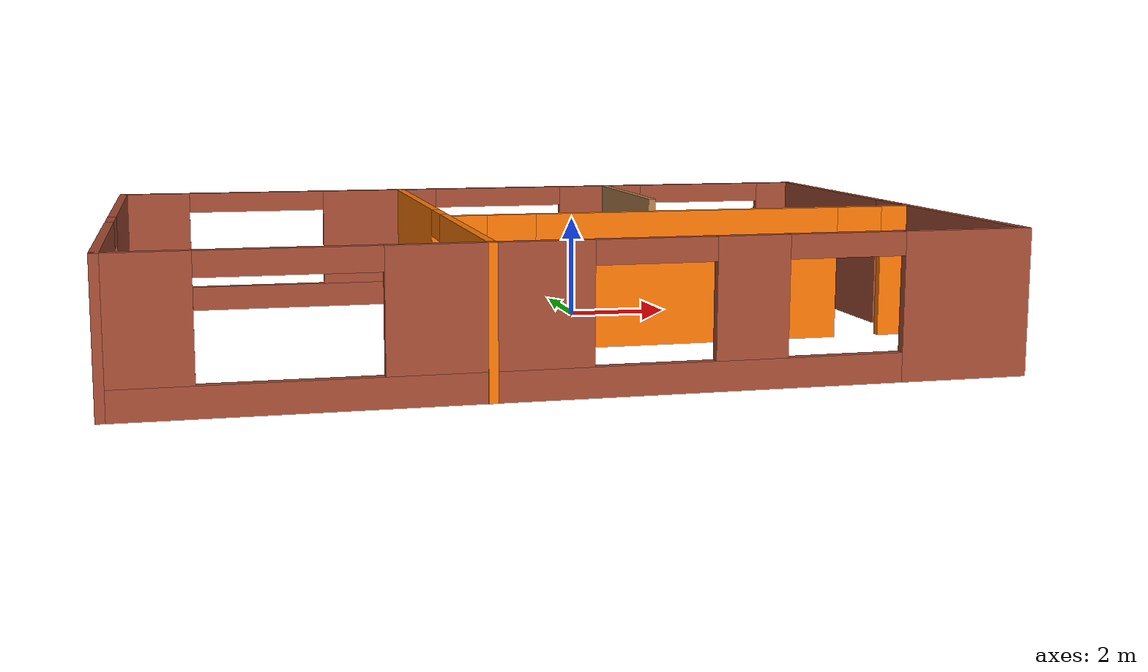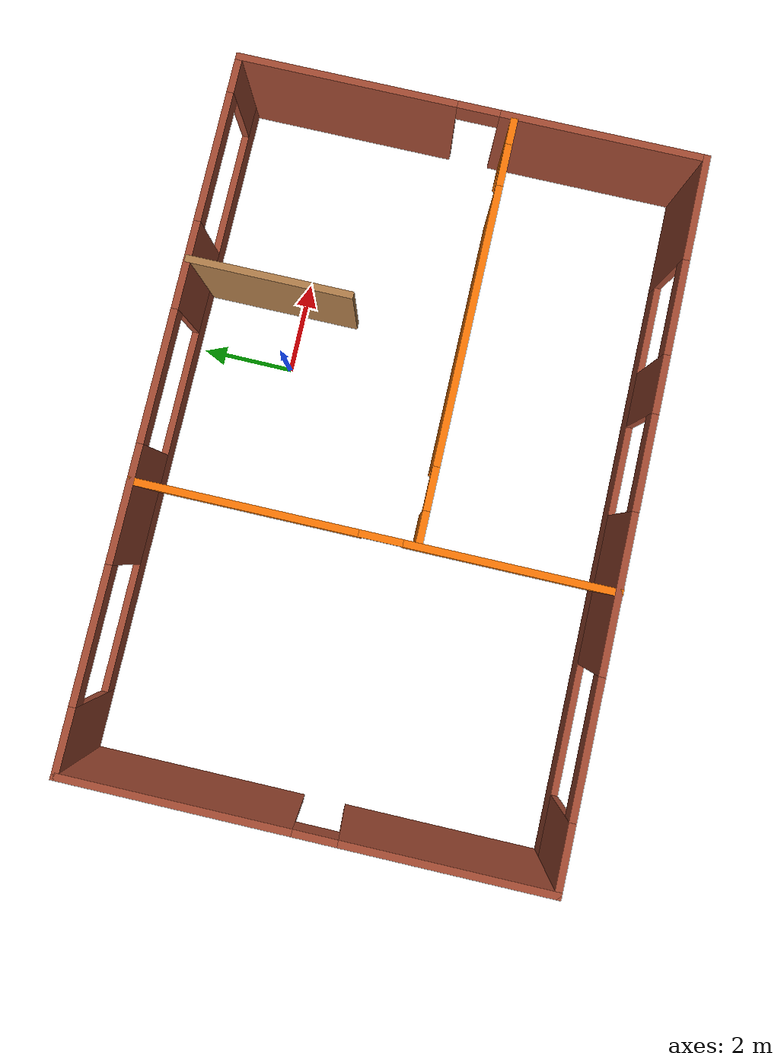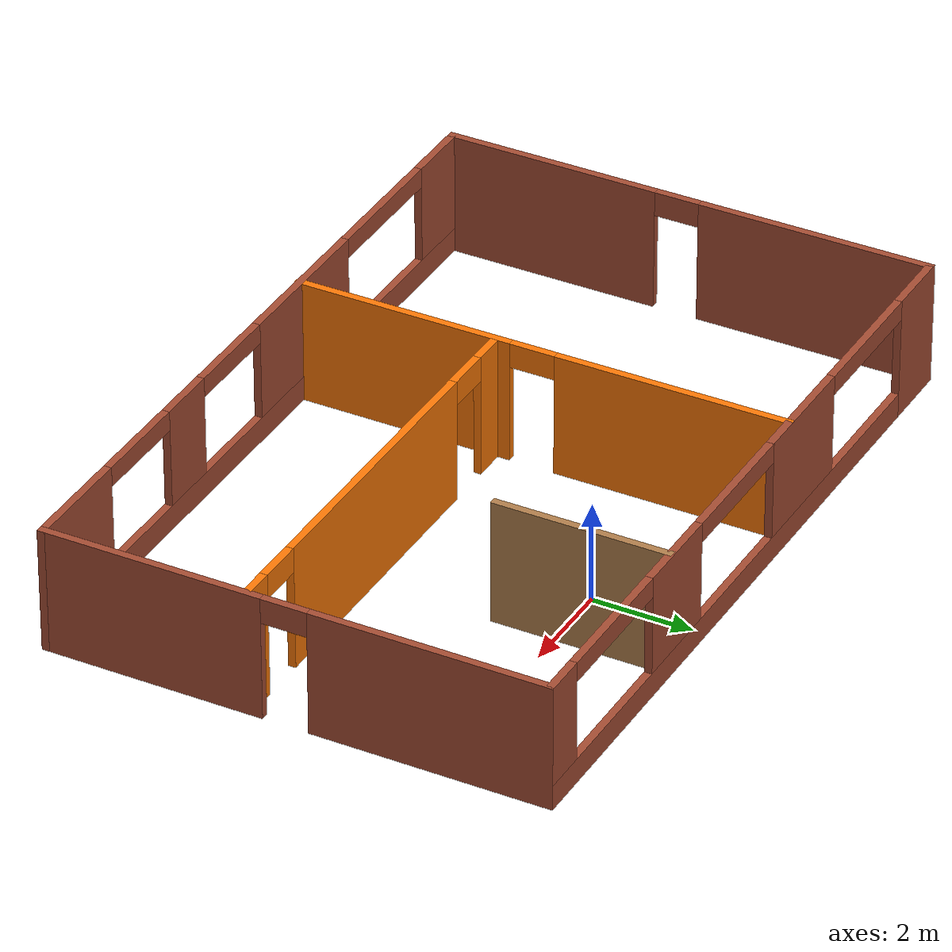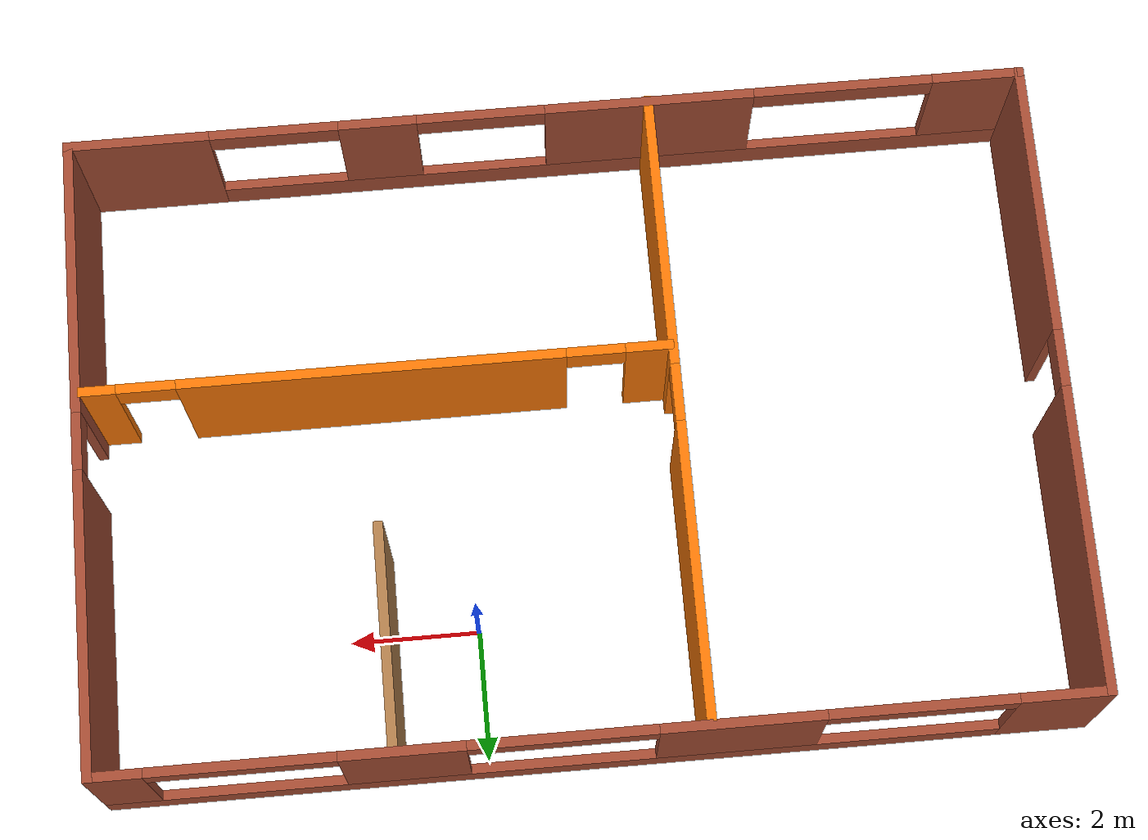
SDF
<?xml version='1.0'?>
<sdf version='1.6'>
  <model name='Apartment'>
    <pose frame=''>-1.6844 -2.73325 0 0 -0 0</pose>
    <link name='Wall_10'>
      <pose frame=''>0 4.92997 0 0 -0 0</pose>
      <visual name='Wall_10_Visual_0'>
        <pose frame=''>-6.79371 0 1.25 0 -0 0</pose>
        <geometry>
          <box>
            <size>1.41257 0.15 2.5</size>
          </box>
        </geometry>
        <material>
          <script>
            <uri>file://media/materials/scripts/gazebo.material</uri>
            <name>Gazebo/Bricks</name>
          </script>
          <ambient>1 1 1 1</ambient>
        </material>
        <meta>
          <layer>0</layer>
        </meta>
      </visual>
      <collision name='Wall_10_Collision_0'>
        <geometry>
          <box>
            <size>1.41257 0.15 2.5</size>
          </box>
        </geometry>
        <pose frame=''>-6.79371 0 1.25 0 -0 0</pose>
      </collision>
      <visual name='Wall_10_Visual_1'>
        <pose frame=''>0.706287 0 0.25 0 -0 0</pose>
        <geometry>
          <box>
            <size>13.5874 0.15 0.5</size>
          </box>
        </geometry>
        <material>
          <script>
            <uri>file://media/materials/scripts/gazebo.material</uri>
            <name>Gazebo/Bricks</name>
          </script>
          <ambient>1 1 1 1</ambient>
        </material>
        <meta>
          <layer>0</layer>
        </meta>
      </visual>
      <collision name='Wall_10_Collision_1'>
        <geometry>
          <box>
            <size>13.5874 0.15 0.5</size>
          </box>
        </geometry>
        <pose frame=''>0.706287 0 0.25 0 -0 0</pose>
      </collision>
      <visual name='Wall_10_Visual_2'>
        <pose frame=''>-2.06392 0 1.5 0 -0 0</pose>
        <geometry>
          <box>
            <size>2.44702 0.15 2</size>
          </box>
        </geometry>
        <material>
          <script>
            <uri>file://media/materials/scripts/gazebo.material</uri>
            <name>Gazebo/Bricks</name>
          </script>
          <ambient>1 1 1 1</ambient>
        </material>
        <meta>
          <layer>0</layer>
        </meta>
      </visual>
      <collision name='Wall_10_Collision_2'>
        <geometry>
          <box>
            <size>2.44702 0.15 2</size>
          </box>
        </geometry>
        <pose frame=''>-2.06392 0 1.5 0 -0 0</pose>
      </collision>
      <visual name='Wall_10_Visual_3'>
        <pose frame=''>2.89414 0 1.5 0 -0 0</pose>
        <geometry>
          <box>
            <size>1.86909 0.15 2</size>
          </box>
        </geometry>
        <material>
          <script>
            <uri>file://media/materials/scripts/gazebo.material</uri>
            <name>Gazebo/Bricks</name>
          </script>
          <ambient>1 1 1 1</ambient>
        </material>
        <meta>
          <layer>0</layer>
        </meta>
      </visual>
      <collision name='Wall_10_Collision_3'>
        <geometry>
          <box>
            <size>1.86909 0.15 2</size>
          </box>
        </geometry>
        <pose frame=''>2.89414 0 1.5 0 -0 0</pose>
      </collision>
      <visual name='Wall_10_Visual_4'>
        <pose frame=''>7.06434 0 1.5 0 -0 0</pose>
        <geometry>
          <box>
            <size>0.87132 0.15 2</size>
          </box>
        </geometry>
        <material>
          <script>
            <uri>file://media/materials/scripts/gazebo.material</uri>
            <name>Gazebo/Bricks</name>
          </script>
          <ambient>1 1 1 1</ambient>
        </material>
        <meta>
          <layer>0</layer>
        </meta>
      </visual>
      <collision name='Wall_10_Collision_4'>
        <geometry>
          <box>
            <size>0.87132 0.15 2</size>
          </box>
        </geometry>
        <pose frame=''>7.06434 0 1.5 0 -0 0</pose>
      </collision>
      <visual name='Wall_10_Visual_5'>
        <pose frame=''>-4.68743 0 2.3 0 -0 0</pose>
        <geometry>
          <box>
            <size>2.8 0.15 0.4</size>
          </box>
        </geometry>
        <material>
          <script>
            <uri>file://media/materials/scripts/gazebo.material</uri>
            <name>Gazebo/Bricks</name>
          </script>
          <ambient>1 1 1 1</ambient>
        </material>
        <meta>
          <layer>0</layer>
        </meta>
      </visual>
      <collision name='Wall_10_Collision_5'>
        <geometry>
          <box>
            <size>2.8 0.15 0.4</size>
          </box>
        </geometry>
        <pose frame=''>-4.68743 0 2.3 0 -0 0</pose>
      </collision>
      <visual name='Wall_10_Visual_6'>
        <pose frame=''>0.559594 0 2.3 0 -0 0</pose>
        <geometry>
          <box>
            <size>2.8 0.15 0.4</size>
          </box>
        </geometry>
        <material>
          <script>
            <uri>file://media/materials/scripts/gazebo.material</uri>
            <name>Gazebo/Bricks</name>
          </script>
          <ambient>1 1 1 1</ambient>
        </material>
        <meta>
          <layer>0</layer>
        </meta>
      </visual>
      <collision name='Wall_10_Collision_6'>
        <geometry>
          <box>
            <size>2.8 0.15 0.4</size>
          </box>
        </geometry>
        <pose frame=''>0.559594 0 2.3 0 -0 0</pose>
      </collision>
      <visual name='Wall_10_Visual_7'>
        <pose frame=''>5.22868 0 2.3 0 -0 0</pose>
        <geometry>
          <box>
            <size>2.8 0.15 0.4</size>
          </box>
        </geometry>
        <material>
          <script>
            <uri>file://media/materials/scripts/gazebo.material</uri>
            <name>Gazebo/Bricks</name>
          </script>
          <ambient>1 1 1 1</ambient>
        </material>
        <meta>
          <layer>0</layer>
        </meta>
      </visual>
      <collision name='Wall_10_Collision_7'>
        <geometry>
          <box>
            <size>2.8 0.15 0.4</size>
          </box>
        </geometry>
        <pose frame=''>5.22868 0 2.3 0 -0 0</pose>
      </collision>
    </link>
    <link name='Wall_11'>
      <pose frame=''>7.425 0.004969 0 0 0 -1.5708</pose>
      <visual name='Wall_11_Visual_0'>
        <pose frame=''>-2.65027 0 1.25 0 -0 0</pose>
        <geometry>
          <box>
            <size>4.69945 0.15 2.5</size>
          </box>
        </geometry>
        <material>
          <script>
            <uri>file://media/materials/scripts/gazebo.material</uri>
            <name>Gazebo/Bricks</name>
          </script>
          <ambient>1 1 1 1</ambient>
        </material>
        <meta>
          <layer>0</layer>
        </meta>
      </visual>
      <collision name='Wall_11_Collision_0'>
        <geometry>
          <box>
            <size>4.69945 0.15 2.5</size>
          </box>
        </geometry>
        <pose frame=''>-2.65027 0 1.25 0 -0 0</pose>
      </collision>
      <visual name='Wall_11_Visual_1'>
        <pose frame=''>2.79973 0 1.25 0 -0 0</pose>
        <geometry>
          <box>
            <size>4.40055 0.15 2.5</size>
          </box>
        </geometry>
        <material>
          <script>
            <uri>file://media/materials/scripts/gazebo.material</uri>
            <name>Gazebo/Bricks</name>
          </script>
          <ambient>1 1 1 1</ambient>
        </material>
        <meta>
          <layer>0</layer>
        </meta>
      </visual>
      <collision name='Wall_11_Collision_1'>
        <geometry>
          <box>
            <size>4.40055 0.15 2.5</size>
          </box>
        </geometry>
        <pose frame=''>2.79973 0 1.25 0 -0 0</pose>
      </collision>
      <visual name='Wall_11_Visual_2'>
        <pose frame=''>0.149452 0 2.25 0 -0 0</pose>
        <geometry>
          <box>
            <size>0.9 0.15 0.5</size>
          </box>
        </geometry>
        <material>
          <script>
            <uri>file://media/materials/scripts/gazebo.material</uri>
            <name>Gazebo/Bricks</name>
          </script>
          <ambient>1 1 1 1</ambient>
        </material>
        <meta>
          <layer>0</layer>
        </meta>
      </visual>
      <collision name='Wall_11_Collision_2'>
        <geometry>
          <box>
            <size>0.9 0.15 0.5</size>
          </box>
        </geometry>
        <pose frame=''>0.149452 0 2.25 0 -0 0</pose>
      </collision>
    </link>
    <link name='Wall_12'>
      <pose frame=''>0 -4.92003 0 0 -0 3.14159</pose>
      <visual name='Wall_12_Visual_0'>
        <pose frame=''>-6.37006 0 1.25 0 -0 0</pose>
        <geometry>
          <box>
            <size>2.25989 0.15 2.5</size>
          </box>
        </geometry>
        <material>
          <script>
            <uri>file://media/materials/scripts/gazebo.material</uri>
            <name>Gazebo/Bricks</name>
          </script>
          <ambient>1 1 1 1</ambient>
        </material>
        <meta>
          <layer>0</layer>
        </meta>
      </visual>
      <collision name='Wall_12_Collision_0'>
        <geometry>
          <box>
            <size>2.25989 0.15 2.5</size>
          </box>
        </geometry>
        <pose frame=''>-6.37006 0 1.25 0 -0 0</pose>
      </collision>
      <visual name='Wall_12_Visual_1'>
        <pose frame=''>1.12994 0 0.25 0 -0 0</pose>
        <geometry>
          <box>
            <size>12.7401 0.15 0.5</size>
          </box>
        </geometry>
        <material>
          <script>
            <uri>file://media/materials/scripts/gazebo.material</uri>
            <name>Gazebo/Bricks</name>
          </script>
          <ambient>1 1 1 1</ambient>
        </material>
        <meta>
          <layer>0</layer>
        </meta>
      </visual>
      <collision name='Wall_12_Collision_1'>
        <geometry>
          <box>
            <size>12.7401 0.15 0.5</size>
          </box>
        </geometry>
        <pose frame=''>1.12994 0 0.25 0 -0 0</pose>
      </collision>
      <visual name='Wall_12_Visual_2'>
        <pose frame=''>-2.62798 0 1.5 0 -0 0</pose>
        <geometry>
          <box>
            <size>1.22426 0.15 2</size>
          </box>
        </geometry>
        <material>
          <script>
            <uri>file://media/materials/scripts/gazebo.material</uri>
            <name>Gazebo/Bricks</name>
          </script>
          <ambient>1 1 1 1</ambient>
        </material>
        <meta>
          <layer>0</layer>
        </meta>
      </visual>
      <collision name='Wall_12_Collision_2'>
        <geometry>
          <box>
            <size>1.22426 0.15 2</size>
          </box>
        </geometry>
        <pose frame=''>-2.62798 0 1.5 0 -0 0</pose>
      </collision>
      <visual name='Wall_12_Visual_3'>
        <pose frame=''>1.62058 0 1.5 0 -0 0</pose>
        <geometry>
          <box>
            <size>3.27286 0.15 2</size>
          </box>
        </geometry>
        <material>
          <script>
            <uri>file://media/materials/scripts/gazebo.material</uri>
            <name>Gazebo/Bricks</name>
          </script>
          <ambient>1 1 1 1</ambient>
        </material>
        <meta>
          <layer>0</layer>
        </meta>
      </visual>
      <collision name='Wall_12_Collision_3'>
        <geometry>
          <box>
            <size>3.27286 0.15 2</size>
          </box>
        </geometry>
        <pose frame=''>1.62058 0 1.5 0 -0 0</pose>
      </collision>
      <visual name='Wall_12_Visual_4'>
        <pose frame=''>6.7785 0 1.5 0 -0 0</pose>
        <geometry>
          <box>
            <size>1.44299 0.15 2</size>
          </box>
        </geometry>
        <material>
          <script>
            <uri>file://media/materials/scripts/gazebo.material</uri>
            <name>Gazebo/Bricks</name>
          </script>
          <ambient>1 1 1 1</ambient>
        </material>
        <meta>
          <layer>0</layer>
        </meta>
      </visual>
      <collision name='Wall_12_Collision_4'>
        <geometry>
          <box>
            <size>1.44299 0.15 2</size>
          </box>
        </geometry>
        <pose frame=''>6.7785 0 1.5 0 -0 0</pose>
      </collision>
      <visual name='Wall_12_Visual_5'>
        <pose frame=''>-4.24011 0 2.3 0 -0 0</pose>
        <geometry>
          <box>
            <size>2 0.15 0.4</size>
          </box>
        </geometry>
        <material>
          <script>
            <uri>file://media/materials/scripts/gazebo.material</uri>
            <name>Gazebo/Bricks</name>
          </script>
          <ambient>1 1 1 1</ambient>
        </material>
        <meta>
          <layer>0</layer>
        </meta>
      </visual>
      <collision name='Wall_12_Collision_5'>
        <geometry>
          <box>
            <size>2 0.15 0.4</size>
          </box>
        </geometry>
        <pose frame=''>-4.24011 0 2.3 0 -0 0</pose>
      </collision>
      <visual name='Wall_12_Visual_6'>
        <pose frame=''>-1.01586 0 2.3 0 -0 0</pose>
        <geometry>
          <box>
            <size>2 0.15 0.4</size>
          </box>
        </geometry>
        <material>
          <script>
            <uri>file://media/materials/scripts/gazebo.material</uri>
            <name>Gazebo/Bricks</name>
          </script>
          <ambient>1 1 1 1</ambient>
        </material>
        <meta>
          <layer>0</layer>
        </meta>
      </visual>
      <collision name='Wall_12_Collision_6'>
        <geometry>
          <box>
            <size>2 0.15 0.4</size>
          </box>
        </geometry>
        <pose frame=''>-1.01586 0 2.3 0 -0 0</pose>
      </collision>
      <visual name='Wall_12_Visual_7'>
        <pose frame=''>4.65701 0 2.3 0 -0 0</pose>
        <geometry>
          <box>
            <size>2.8 0.15 0.4</size>
          </box>
        </geometry>
        <material>
          <script>
            <uri>file://media/materials/scripts/gazebo.material</uri>
            <name>Gazebo/Bricks</name>
          </script>
          <ambient>1 1 1 1</ambient>
        </material>
        <meta>
          <layer>0</layer>
        </meta>
      </visual>
      <collision name='Wall_12_Collision_7'>
        <geometry>
          <box>
            <size>2.8 0.15 0.4</size>
          </box>
        </geometry>
        <pose frame=''>4.65701 0 2.3 0 -0 0</pose>
      </collision>
    </link>
    <link name='Wall_14'>
      <pose frame=''>-1.60005 -0.004969 0 0 0 -1.5708</pose>
      <visual name='Wall_14_Visual_0'>
        <pose frame=''>-2.65524 0 1.25 0 -0 0</pose>
        <geometry>
          <box>
            <size>4.68951 0.15 2.5</size>
          </box>
        </geometry>
        <material>
          <script>
            <uri>file://media/materials/scripts/gazebo.material</uri>
            <name>Gazebo/Grey</name>
          </script>
          <ambient>0.996078 0.47451 0.0196078 1</ambient>
        </material>
        <meta>
          <layer>0</layer>
        </meta>
      </visual>
      <collision name='Wall_14_Collision_0'>
        <geometry>
          <box>
            <size>4.68951 0.15 2.5</size>
          </box>
        </geometry>
        <pose frame=''>-2.65524 0 1.25 0 -0 0</pose>
      </collision>
      <visual name='Wall_14_Visual_1'>
        <pose frame=''>2.79476 0 1.25 0 -0 0</pose>
        <geometry>
          <box>
            <size>4.41049 0.15 2.5</size>
          </box>
        </geometry>
        <material>
          <script>
            <uri>file://media/materials/scripts/gazebo.material</uri>
            <name>Gazebo/Grey</name>
          </script>
          <ambient>0.996078 0.47451 0.0196078 1</ambient>
        </material>
        <meta>
          <layer>0</layer>
        </meta>
      </visual>
      <collision name='Wall_14_Collision_1'>
        <geometry>
          <box>
            <size>4.41049 0.15 2.5</size>
          </box>
        </geometry>
        <pose frame=''>2.79476 0 1.25 0 -0 0</pose>
      </collision>
      <visual name='Wall_14_Visual_2'>
        <pose frame=''>0.139514 0 2.25 0 -0 0</pose>
        <geometry>
          <box>
            <size>0.9 0.15 0.5</size>
          </box>
        </geometry>
        <material>
          <script>
            <uri>file://media/materials/scripts/gazebo.material</uri>
            <name>Gazebo/Grey</name>
          </script>
          <ambient>0.996078 0.47451 0.0196078 1</ambient>
        </material>
        <meta>
          <layer>0</layer>
        </meta>
      </visual>
      <collision name='Wall_14_Collision_2'>
        <geometry>
          <box>
            <size>0.9 0.15 0.5</size>
          </box>
        </geometry>
        <pose frame=''>0.139514 0 2.25 0 -0 0</pose>
      </collision>
    </link>
    <link name='Wall_16'>
      <pose frame=''>2.88579 -0.904921 0 0 -0 0</pose>
      <visual name='Wall_16_Visual_0'>
        <pose frame=''>-4.13238 0 1.25 0 -0 0</pose>
        <geometry>
          <box>
            <size>0.735239 0.15 2.5</size>
          </box>
        </geometry>
        <material>
          <script>
            <uri>file://media/materials/scripts/gazebo.material</uri>
            <name>Gazebo/Grey</name>
          </script>
          <ambient>0.996078 0.47451 0.0196078 1</ambient>
        </material>
        <meta>
          <layer>0</layer>
        </meta>
      </visual>
      <collision name='Wall_16_Collision_0'>
        <geometry>
          <box>
            <size>0.735239 0.15 2.5</size>
          </box>
        </geometry>
        <pose frame=''>-4.13238 0 1.25 0 -0 0</pose>
      </collision>
      <visual name='Wall_16_Visual_1'>
        <pose frame=''>0.084394 0 1.25 0 -0 0</pose>
        <geometry>
          <box>
            <size>5.89831 0.15 2.5</size>
          </box>
        </geometry>
        <material>
          <script>
            <uri>file://media/materials/scripts/gazebo.material</uri>
            <name>Gazebo/Grey</name>
          </script>
          <ambient>0.996078 0.47451 0.0196078 1</ambient>
        </material>
        <meta>
          <layer>0</layer>
        </meta>
      </visual>
      <collision name='Wall_16_Collision_1'>
        <geometry>
          <box>
            <size>5.89831 0.15 2.5</size>
          </box>
        </geometry>
        <pose frame=''>0.084394 0 1.25 0 -0 0</pose>
      </collision>
      <visual name='Wall_16_Visual_2'>
        <pose frame=''>4.21678 0 1.25 0 -0 0</pose>
        <geometry>
          <box>
            <size>0.56645 0.15 2.5</size>
          </box>
        </geometry>
        <material>
          <script>
            <uri>file://media/materials/scripts/gazebo.material</uri>
            <name>Gazebo/Grey</name>
          </script>
          <ambient>0.996078 0.47451 0.0196078 1</ambient>
        </material>
        <meta>
          <layer>0</layer>
        </meta>
      </visual>
      <collision name='Wall_16_Collision_2'>
        <geometry>
          <box>
            <size>0.56645 0.15 2.5</size>
          </box>
        </geometry>
        <pose frame=''>4.21678 0 1.25 0 -0 0</pose>
      </collision>
      <visual name='Wall_16_Visual_3'>
        <pose frame=''>-3.31476 0 2.25 0 -0 0</pose>
        <geometry>
          <box>
            <size>0.9 0.15 0.5</size>
          </box>
        </geometry>
        <material>
          <script>
            <uri>file://media/materials/scripts/gazebo.material</uri>
            <name>Gazebo/Grey</name>
          </script>
          <ambient>0.996078 0.47451 0.0196078 1</ambient>
        </material>
        <meta>
          <layer>0</layer>
        </meta>
      </visual>
      <collision name='Wall_16_Collision_3'>
        <geometry>
          <box>
            <size>0.9 0.15 0.5</size>
          </box>
        </geometry>
        <pose frame=''>-3.31476 0 2.25 0 -0 0</pose>
      </collision>
      <visual name='Wall_16_Visual_4'>
        <pose frame=''>3.48355 0 2.25 0 -0 0</pose>
        <geometry>
          <box>
            <size>0.9 0.15 0.5</size>
          </box>
        </geometry>
        <material>
          <script>
            <uri>file://media/materials/scripts/gazebo.material</uri>
            <name>Gazebo/Grey</name>
          </script>
          <ambient>0.996078 0.47451 0.0196078 1</ambient>
        </material>
        <meta>
          <layer>0</layer>
        </meta>
      </visual>
      <collision name='Wall_16_Collision_4'>
        <geometry>
          <box>
            <size>0.9 0.15 0.5</size>
          </box>
        </geometry>
        <pose frame=''>3.48355 0 2.25 0 -0 0</pose>
      </collision>
    </link>
    <link name='Wall_18'>
      <collision name='Wall_18_Collision'>
        <geometry>
          <box>
            <size>3.5 0.15 2.5</size>
          </box>
        </geometry>
        <pose frame=''>0 0 1.25 0 -0 0</pose>
      </collision>
      <visual name='Wall_18_Visual'>
        <pose frame=''>0 0 1.25 0 -0 0</pose>
        <geometry>
          <box>
            <size>3.5 0.15 2.5</size>
          </box>
        </geometry>
        <material>
          <script>
            <uri>file://media/materials/scripts/gazebo.material</uri>
            <name>Gazebo/Wood</name>
          </script>
          <ambient>1 1 1 1</ambient>
        </material>
        <meta>
          <layer>0</layer>
        </meta>
      </visual>
      <pose frame=''>3.02341 3.22982 0 0 0 -1.5708</pose>
    </link>
    <link name='Wall_9'>
      <pose frame=''>-7.425 0.004969 0 0 -0 1.5708</pose>
      <visual name='Wall_9_Visual_0'>
        <pose frame=''>-2.82254 0 1.25 0 -0 0</pose>
        <geometry>
          <box>
            <size>4.35492 0.15 2.5</size>
          </box>
        </geometry>
        <material>
          <script>
            <uri>file://media/materials/scripts/gazebo.material</uri>
            <name>Gazebo/Bricks</name>
          </script>
          <ambient>1 1 1 1</ambient>
        </material>
        <meta>
          <layer>0</layer>
        </meta>
      </visual>
      <collision name='Wall_9_Collision_0'>
        <geometry>
          <box>
            <size>4.35492 0.15 2.5</size>
          </box>
        </geometry>
        <pose frame=''>-2.82254 0 1.25 0 -0 0</pose>
      </collision>
      <visual name='Wall_9_Visual_1'>
        <pose frame=''>2.62746 0 1.25 0 -0 0</pose>
        <geometry>
          <box>
            <size>4.74508 0.15 2.5</size>
          </box>
        </geometry>
        <material>
          <script>
            <uri>file://media/materials/scripts/gazebo.material</uri>
            <name>Gazebo/Bricks</name>
          </script>
          <ambient>1 1 1 1</ambient>
        </material>
        <meta>
          <layer>0</layer>
        </meta>
      </visual>
      <collision name='Wall_9_Collision_1'>
        <geometry>
          <box>
            <size>4.74508 0.15 2.5</size>
          </box>
        </geometry>
        <pose frame=''>2.62746 0 1.25 0 -0 0</pose>
      </collision>
      <visual name='Wall_9_Visual_2'>
        <pose frame=''>-0.195079 0 2.25 0 -0 0</pose>
        <geometry>
          <box>
            <size>0.9 0.15 0.5</size>
          </box>
        </geometry>
        <material>
          <script>
            <uri>file://media/materials/scripts/gazebo.material</uri>
            <name>Gazebo/Bricks</name>
          </script>
          <ambient>1 1 1 1</ambient>
        </material>
        <meta>
          <layer>0</layer>
        </meta>
      </visual>
      <collision name='Wall_9_Collision_2'>
        <geometry>
          <box>
            <size>0.9 0.15 0.5</size>
          </box>
        </geometry>
        <pose frame=''>-0.195079 0 2.25 0 -0 0</pose>
      </collision>
    </link>
    <static>1</static>
  </model>
</sdf>
